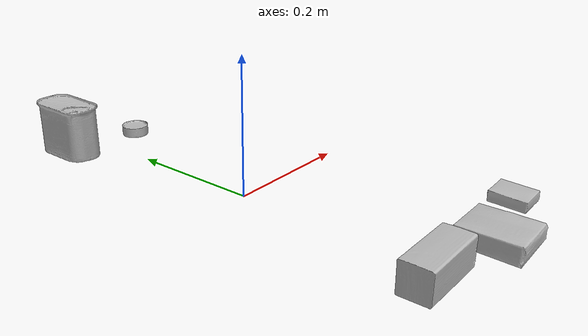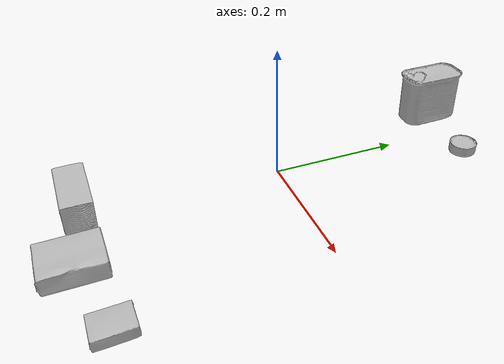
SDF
<?xml version="1.0" ?>
<sdf version="1.4">
  <world name="default">
    <light name="light1" type="point">
      <pose>0 0 1 0 0 0</pose>
      <diffuse>3 3 3 1</diffuse>
      <specular>3 3 3 1</specular>
    </light>
    <light name="light2" type="point">
      <pose>0 0.5 2 0 0 0</pose>
      <diffuse>1 1 1 1</diffuse>
      <specular>1 1 1 1</specular>
    </light>
    <light name="light3" type="point">
      <pose>0 0.5 2 0 0 0</pose>
      <diffuse>3 3 3 1</diffuse>
      <specular>3 3 3 1</specular>
    </light>
    <scene>
      <ambient>0.7 0.7 0.7</ambient>
    </scene>
    <model name="box1">
      <link name="link_box1">
        <collision name="default">
          <geometry>
            <mesh>
              <uri>model://pudding_box/collision_meshes/collision.obj</uri>
              <scale>0.5 0.5 0.5</scale>
            </mesh>
          </geometry>
          <surface>
            <friction>
              <ode>
                <mu>0.5</mu>
                <mu2>0.5</mu2>
              </ode>
            </friction>
          </surface>
        </collision>
        <visual name="default">
          <geometry>
            <mesh>
              <uri>model://pudding_box/visual_meshes/visual.dae</uri>
              <scale>0.5 0.5 0.5</scale>
            </mesh>
          </geometry>
        </visual>
        <inertial>
          <mass>0.037190694361925125</mass>
          <pose>0.00024474109522998333 0.00040339428232982755 -0.0002594413817860186 0.005213101817299687 -0.0066037968510836995 0.02007982330137587</pose>
          <inertia>
            <ixx>1.0510541e-05</ixx>
            <iyy>7.071568e-06</iyy>
            <izz>1.552156e-05</izz>
            <ixy>0</ixy>
            <ixz>0</ixz>
            <iyz>0</iyz>
          </inertia>
        </inertial>
      </link>
      <pose>0.2197413444519043 -0.29025208950042725 0.009862902574241161 0.022348661397564015 -0.011391673155660871 -9.41681985247358e-05</pose>
    </model>
    <model name="box2">
      <link name="link_box2">
        <collision name="default">
          <geometry>
            <mesh>
              <uri>model://gelatin_box/collision_meshes/collision.obj</uri>
              <scale>1.0 1.0 1.0</scale>
            </mesh>
          </geometry>
          <surface>
            <friction>
              <ode>
                <mu>0.5</mu>
                <mu2>0.5</mu2>
              </ode>
            </friction>
          </surface>
        </collision>
        <visual name="default">
          <geometry>
            <mesh>
              <uri>model://gelatin_box/visual_meshes/visual.dae</uri>
              <scale>1.0 1.0 1.0</scale>
            </mesh>
          </geometry>
        </visual>
        <inertial>
          <mass>0.11744645982980728</mass>
          <pose>0.0004319618456065655 0.00011156871914863586 -0.0003640321083366871 -0.001050371865231848 -0.004755818223747806 0.01644056319675078</pose>
          <inertia>
            <ixx>8.290762e-05</ixx>
            <iyy>5.9220478e-05</iyy>
            <izz>0.00012620387</izz>
            <ixy>0</ixy>
            <ixz>0</ixz>
            <iyz>0</iyz>
          </inertia>
        </inertial>
      </link>
      <pose>0.09995126724243164 -0.32007166743278503 0.01516831386834383 0.005597486760881009 -0.007304579739135303 6.922315425324736e-06</pose>
    </model>
    <model name="box3">
      <link name="link_box3">
        <collision name="default">
          <geometry>
            <mesh>
              <uri>model://wood_block/collision_meshes/collision.obj</uri>
              <scale>0.5 0.5 0.5</scale>
            </mesh>
          </geometry>
          <surface>
            <friction>
              <ode>
                <mu>0.5</mu>
                <mu2>0.5</mu2>
              </ode>
            </friction>
          </surface>
        </collision>
        <visual name="default">
          <geometry>
            <mesh>
              <uri>model://wood_block/visual_meshes/visual.dae</uri>
              <scale>0.5 0.5 0.5</scale>
            </mesh>
          </geometry>
        </visual>
        <inertial>
          <mass>0.2439567744731903</mass>
          <pose>-2.906657982748584e-06 -0.00028540476341731846 0.00013204292918089777 -0.05220841280222248 -0.00519269633387802 -0.006861376952924709</pose>
          <inertia>
            <ixx>8.161277e-05</ixx>
            <iyy>0.00025781477</iyy>
            <izz>0.0002568504</izz>
            <ixy>0</ixy>
            <ixz>0</ixz>
            <iyz>0</iyz>
          </inertia>
        </inertial>
      </link>
      <pose>-0.02005835436284542 -0.2994343340396881 0.022629259154200554 -0.005208534513395798 0.0057187020512620155 0.005304599835600549</pose>
    </model>
    <model name="can1">
      <link name="link_can1">
        <collision name="default">
          <geometry>
            <mesh>
              <uri>model://tuna_fish_can/collision_meshes/collision.obj</uri>
              <scale>0.5 0.5 0.5</scale>
            </mesh>
          </geometry>
          <surface>
            <friction>
              <ode>
                <mu>0.5</mu>
                <mu2>0.5</mu2>
              </ode>
            </friction>
          </surface>
        </collision>
        <visual name="default">
          <geometry>
            <mesh>
              <uri>model://tuna_fish_can/visual_meshes/visual.dae</uri>
              <scale>0.5 0.5 0.5</scale>
            </mesh>
          </geometry>
        </visual>
        <inertial>
          <mass>0.02880808152258396</mass>
          <pose>-2.036173827946186e-05 -7.256211574713234e-06 -0.0005269025568850338 -0.0017944794030227106 0.00017162104037918286 0.24054189207372795</pose>
          <inertia>
            <ixx>3.894896e-06</ixx>
            <iyy>3.878662e-06</iyy>
            <izz>6.6647226e-06</izz>
            <ixy>0</ixy>
            <ixz>0</ixz>
            <iyz>0</iyz>
          </inertia>
        </inertial>
      </link>
      <pose>0.05997501686215401 0.30002278089523315 0.008520002476871014 2.6011516864156075e-08 6.955815715944926e-08 -8.196231115796707e-07</pose>
    </model>
    <model name="can2">
      <link name="link_can2">
        <collision name="default">
          <geometry>
            <mesh>
              <uri>model://potted_meat_can/collision_meshes/collision.obj</uri>
              <scale>1.0 1.0 1.0</scale>
            </mesh>
          </geometry>
          <surface>
            <friction>
              <ode>
                <mu>0.5</mu>
                <mu2>0.5</mu2>
              </ode>
            </friction>
          </surface>
        </collision>
        <visual name="default">
          <geometry>
            <mesh>
              <uri>model://potted_meat_can/visual_meshes/visual.dae</uri>
              <scale>1.0 1.0 1.0</scale>
            </mesh>
          </geometry>
        </visual>
        <inertial>
          <mass>0.21485549211502075</mass>
          <pose>0.00022888135572429746 -5.989110650261864e-05 -0.0006367442547343671 -0.028093358319385277 -0.007232601893117688 0.015406275523281094</pose>
          <inertia>
            <ixx>0.00027638907</ixx>
            <iyy>0.00016792737</iyy>
            <izz>0.00020102048</izz>
            <ixy>0</ixy>
            <ixz>0</ixz>
            <iyz>0</iyz>
          </inertia>
        </inertial>
      </link>
      <pose>-0.06010153144598007 0.3100054860115051 0.04212800785899162 -5.6323184256287295e-08 -4.329339779488255e-07 1.4224507632147589e-08</pose>
    </model>
  </world>
</sdf>
